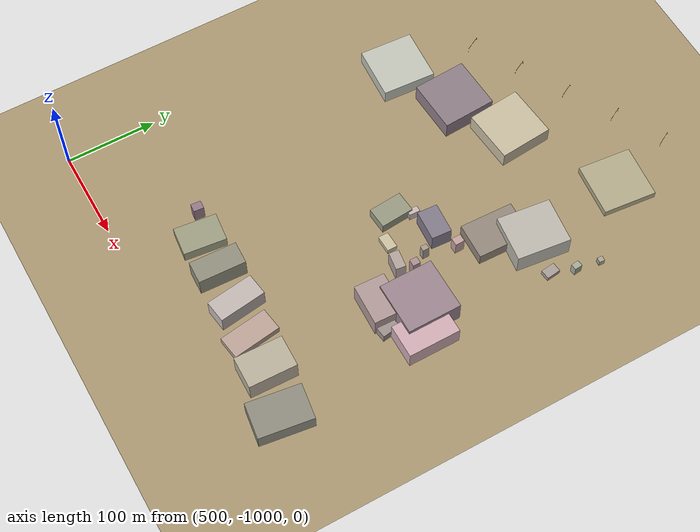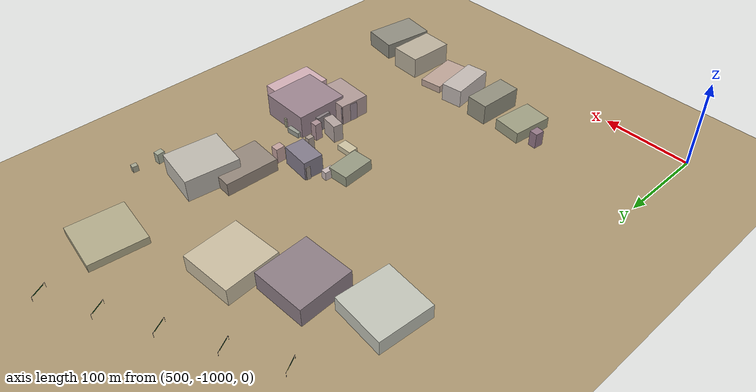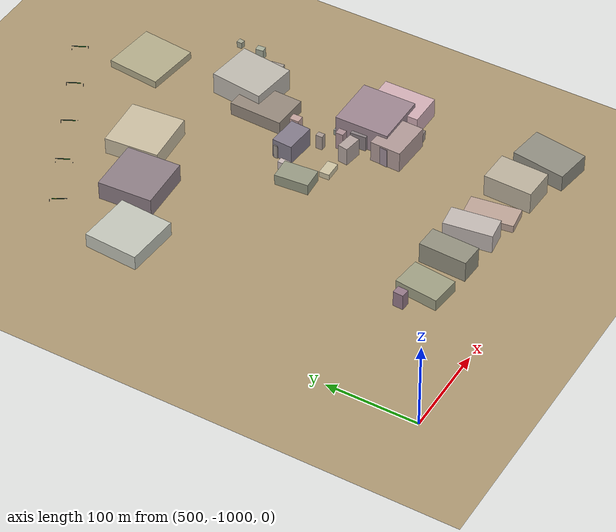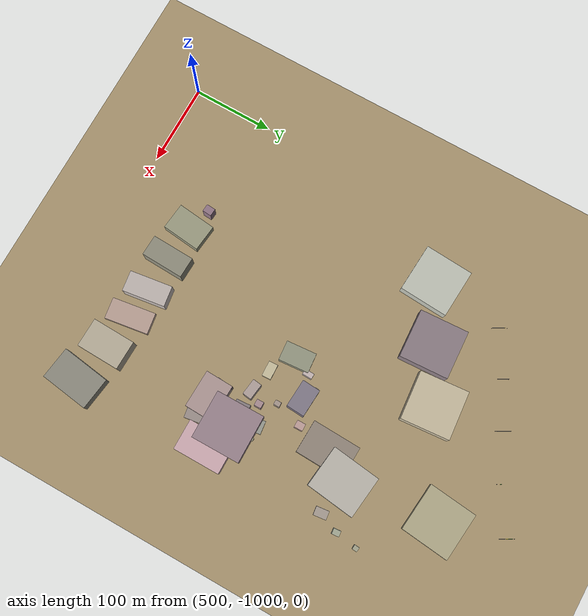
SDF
<sdf version="1.9">
 <world name="crossroad_world">
  <model name="ground_plane">
   <static>true</static>
   <pose>0 0 -0.05 0 0 0</pose>
   <link name="link">
    <collision name="collision">
     <geometry><plane><normal>0 0 1</normal><size>10000 10000</size></plane></geometry>
    </collision>
    <visual name="visual">
     <geometry><plane><normal>0 0 1</normal><size>15000 15000</size></plane></geometry>
     <material><ambient>0.68 0.60 0.45 1</ambient><diffuse>0.68 0.60 0.45 1</diffuse></material>
    </visual>
   </link>
  </model>
  <model name="gantry_92">
   <static>true</static>
   <pose>688.889 -483.650 0 0 0 -1.072</pose>
   <link name="link">
    <visual name="post_l">
     <pose>-8.900 0 2.925 0 0 0</pose>
     <geometry><cylinder><radius>0.1</radius><length>5.85</length></cylinder></geometry>
     <material><ambient>0.30 0.30 0.35 1</ambient><diffuse>0.30 0.30 0.35 1</diffuse></material>
    </visual>
    <visual name="post_r">
     <pose>8.900 0 2.925 0 0 0</pose>
     <geometry><cylinder><radius>0.1</radius><length>5.85</length></cylinder></geometry>
     <material><ambient>0.30 0.30 0.35 1</ambient><diffuse>0.30 0.30 0.35 1</diffuse></material>
    </visual>
    <visual name="beam">
     <pose>0 0 6.000 0 0 0</pose>
     <geometry><box><size>17.800 0.22 0.22</size></box></geometry>
     <material><ambient>0.30 0.30 0.35 1</ambient><diffuse>0.30 0.30 0.35 1</diffuse></material>
    </visual>
    <visual name="sign_border">
     <pose>0 -0.14 5.450 0 0 0</pose>
     <geometry><box><size>12.896 0.04 0.92</size></box></geometry>
     <material><ambient>0.90 0.85 0.10 1</ambient><diffuse>0.90 0.85 0.10 1</diffuse></material>
    </visual>
    <visual name="sign_panel">
     <pose>0 -0.15 5.450 0 0 0</pose>
     <geometry><box><size>12.816 0.05 0.86</size></box></geometry>
     <material><ambient>0.05 0.38 0.10 1</ambient><diffuse>0.05 0.38 0.10 1</diffuse></material>
    </visual>
    <collision name="col_post_l">
     <pose>-8.900 0 2.925 0 0 0</pose>
     <geometry><cylinder><radius>0.1</radius><length>5.85</length></cylinder></geometry>
    </collision>
    <collision name="col_post_r">
     <pose>8.900 0 2.925 0 0 0</pose>
     <geometry><cylinder><radius>0.1</radius><length>5.85</length></cylinder></geometry>
    </collision>
    <collision name="col_beam">
     <pose>0 0 6.000 0 0 0</pose>
     <geometry><box><size>17.800 0.22 0.22</size></box></geometry>
    </collision>
   </link>
  </model>
  <model name="gantry_93">
   <static>true</static>
   <pose>636.208 -512.367 0 0 0 -1.072</pose>
   <link name="link">
    <visual name="post_l">
     <pose>-8.900 0 2.925 0 0 0</pose>
     <geometry><cylinder><radius>0.1</radius><length>5.85</length></cylinder></geometry>
     <material><ambient>0.30 0.30 0.35 1</ambient><diffuse>0.30 0.30 0.35 1</diffuse></material>
    </visual>
    <visual name="post_r">
     <pose>8.900 0 2.925 0 0 0</pose>
     <geometry><cylinder><radius>0.1</radius><length>5.85</length></cylinder></geometry>
     <material><ambient>0.30 0.30 0.35 1</ambient><diffuse>0.30 0.30 0.35 1</diffuse></material>
    </visual>
    <visual name="beam">
     <pose>0 0 6.000 0 0 0</pose>
     <geometry><box><size>17.800 0.22 0.22</size></box></geometry>
     <material><ambient>0.30 0.30 0.35 1</ambient><diffuse>0.30 0.30 0.35 1</diffuse></material>
    </visual>
    <visual name="sign_border">
     <pose>0 -0.14 5.450 0 0 0</pose>
     <geometry><box><size>12.896 0.04 0.92</size></box></geometry>
     <material><ambient>0.90 0.85 0.10 1</ambient><diffuse>0.90 0.85 0.10 1</diffuse></material>
    </visual>
    <visual name="sign_panel">
     <pose>0 -0.15 5.450 0 0 0</pose>
     <geometry><box><size>12.816 0.05 0.86</size></box></geometry>
     <material><ambient>0.05 0.38 0.10 1</ambient><diffuse>0.05 0.38 0.10 1</diffuse></material>
    </visual>
    <collision name="col_post_l">
     <pose>-8.900 0 2.925 0 0 0</pose>
     <geometry><cylinder><radius>0.1</radius><length>5.85</length></cylinder></geometry>
    </collision>
    <collision name="col_post_r">
     <pose>8.900 0 2.925 0 0 0</pose>
     <geometry><cylinder><radius>0.1</radius><length>5.85</length></cylinder></geometry>
    </collision>
    <collision name="col_beam">
     <pose>0 0 6.000 0 0 0</pose>
     <geometry><box><size>17.800 0.22 0.22</size></box></geometry>
    </collision>
   </link>
  </model>
  <model name="gantry_94">
   <static>true</static>
   <pose>583.526 -541.084 0 0 0 -1.072</pose>
   <link name="link">
    <visual name="post_l">
     <pose>-8.900 0 2.925 0 0 0</pose>
     <geometry><cylinder><radius>0.1</radius><length>5.85</length></cylinder></geometry>
     <material><ambient>0.30 0.30 0.35 1</ambient><diffuse>0.30 0.30 0.35 1</diffuse></material>
    </visual>
    <visual name="post_r">
     <pose>8.900 0 2.925 0 0 0</pose>
     <geometry><cylinder><radius>0.1</radius><length>5.85</length></cylinder></geometry>
     <material><ambient>0.30 0.30 0.35 1</ambient><diffuse>0.30 0.30 0.35 1</diffuse></material>
    </visual>
    <visual name="beam">
     <pose>0 0 6.000 0 0 0</pose>
     <geometry><box><size>17.800 0.22 0.22</size></box></geometry>
     <material><ambient>0.30 0.30 0.35 1</ambient><diffuse>0.30 0.30 0.35 1</diffuse></material>
    </visual>
    <visual name="sign_border">
     <pose>0 -0.14 5.450 0 0 0</pose>
     <geometry><box><size>12.896 0.04 0.92</size></box></geometry>
     <material><ambient>0.90 0.85 0.10 1</ambient><diffuse>0.90 0.85 0.10 1</diffuse></material>
    </visual>
    <visual name="sign_panel">
     <pose>0 -0.15 5.450 0 0 0</pose>
     <geometry><box><size>12.816 0.05 0.86</size></box></geometry>
     <material><ambient>0.05 0.38 0.10 1</ambient><diffuse>0.05 0.38 0.10 1</diffuse></material>
    </visual>
    <collision name="col_post_l">
     <pose>-8.900 0 2.925 0 0 0</pose>
     <geometry><cylinder><radius>0.1</radius><length>5.85</length></cylinder></geometry>
    </collision>
    <collision name="col_post_r">
     <pose>8.900 0 2.925 0 0 0</pose>
     <geometry><cylinder><radius>0.1</radius><length>5.85</length></cylinder></geometry>
    </collision>
    <collision name="col_beam">
     <pose>0 0 6.000 0 0 0</pose>
     <geometry><box><size>17.800 0.22 0.22</size></box></geometry>
    </collision>
   </link>
  </model>
  <model name="gantry_97">
   <static>true</static>
   <pose>741.571 -454.933 0 0 0 -1.072</pose>
   <link name="link">
    <visual name="post_l">
     <pose>-8.900 0 2.925 0 0 0</pose>
     <geometry><cylinder><radius>0.1</radius><length>5.85</length></cylinder></geometry>
     <material><ambient>0.30 0.30 0.35 1</ambient><diffuse>0.30 0.30 0.35 1</diffuse></material>
    </visual>
    <visual name="post_r">
     <pose>8.900 0 2.925 0 0 0</pose>
     <geometry><cylinder><radius>0.1</radius><length>5.85</length></cylinder></geometry>
     <material><ambient>0.30 0.30 0.35 1</ambient><diffuse>0.30 0.30 0.35 1</diffuse></material>
    </visual>
    <visual name="beam">
     <pose>0 0 6.000 0 0 0</pose>
     <geometry><box><size>17.800 0.22 0.22</size></box></geometry>
     <material><ambient>0.30 0.30 0.35 1</ambient><diffuse>0.30 0.30 0.35 1</diffuse></material>
    </visual>
    <visual name="sign_border">
     <pose>0 -0.14 5.450 0 0 0</pose>
     <geometry><box><size>12.896 0.04 0.92</size></box></geometry>
     <material><ambient>0.90 0.85 0.10 1</ambient><diffuse>0.90 0.85 0.10 1</diffuse></material>
    </visual>
    <visual name="sign_panel">
     <pose>0 -0.15 5.450 0 0 0</pose>
     <geometry><box><size>12.816 0.05 0.86</size></box></geometry>
     <material><ambient>0.05 0.38 0.10 1</ambient><diffuse>0.05 0.38 0.10 1</diffuse></material>
    </visual>
    <collision name="col_post_l">
     <pose>-8.900 0 2.925 0 0 0</pose>
     <geometry><cylinder><radius>0.1</radius><length>5.85</length></cylinder></geometry>
    </collision>
    <collision name="col_post_r">
     <pose>8.900 0 2.925 0 0 0</pose>
     <geometry><cylinder><radius>0.1</radius><length>5.85</length></cylinder></geometry>
    </collision>
    <collision name="col_beam">
     <pose>0 0 6.000 0 0 0</pose>
     <geometry><box><size>17.800 0.22 0.22</size></box></geometry>
    </collision>
   </link>
  </model>
  <model name="gantry_98">
   <static>true</static>
   <pose>794.252 -426.216 0 0 0 -1.072</pose>
   <link name="link">
    <visual name="post_l">
     <pose>-8.900 0 2.925 0 0 0</pose>
     <geometry><cylinder><radius>0.1</radius><length>5.85</length></cylinder></geometry>
     <material><ambient>0.30 0.30 0.35 1</ambient><diffuse>0.30 0.30 0.35 1</diffuse></material>
    </visual>
    <visual name="post_r">
     <pose>8.900 0 2.925 0 0 0</pose>
     <geometry><cylinder><radius>0.1</radius><length>5.85</length></cylinder></geometry>
     <material><ambient>0.30 0.30 0.35 1</ambient><diffuse>0.30 0.30 0.35 1</diffuse></material>
    </visual>
    <visual name="beam">
     <pose>0 0 6.000 0 0 0</pose>
     <geometry><box><size>17.800 0.22 0.22</size></box></geometry>
     <material><ambient>0.30 0.30 0.35 1</ambient><diffuse>0.30 0.30 0.35 1</diffuse></material>
    </visual>
    <visual name="sign_border">
     <pose>0 -0.14 5.450 0 0 0</pose>
     <geometry><box><size>12.896 0.04 0.92</size></box></geometry>
     <material><ambient>0.90 0.85 0.10 1</ambient><diffuse>0.90 0.85 0.10 1</diffuse></material>
    </visual>
    <visual name="sign_panel">
     <pose>0 -0.15 5.450 0 0 0</pose>
     <geometry><box><size>12.816 0.05 0.86</size></box></geometry>
     <material><ambient>0.05 0.38 0.10 1</ambient><diffuse>0.05 0.38 0.10 1</diffuse></material>
    </visual>
    <collision name="col_post_l">
     <pose>-8.900 0 2.925 0 0 0</pose>
     <geometry><cylinder><radius>0.1</radius><length>5.85</length></cylinder></geometry>
    </collision>
    <collision name="col_post_r">
     <pose>8.900 0 2.925 0 0 0</pose>
     <geometry><cylinder><radius>0.1</radius><length>5.85</length></cylinder></geometry>
    </collision>
    <collision name="col_beam">
     <pose>0 0 6.000 0 0 0</pose>
     <geometry><box><size>17.800 0.22 0.22</size></box></geometry>
    </collision>
   </link>
  </model>
  <model name="building_137">
   <static>true</static>
   <pose>815.275 -502.092 4.295 0 0 -0.101</pose>
   <link name="link">
    <visual name="body">
     <geometry><box><size>60.00 60.00 8.59</size></box></geometry>
     <material><ambient>0.71 0.68 0.55 1</ambient><diffuse>0.71 0.68 0.55 1</diffuse></material>
    </visual>
    <collision name="col"><geometry><box><size>60.00 60.00 8.59</size></box></geometry></collision>
   </link>
  </model>
  <model name="building_273">
   <static>true</static>
   <pose>788.953 -724.819 8.587 0 0 0.006</pose>
   <link name="link">
    <visual name="body">
     <geometry><box><size>5.98 7.36 17.17</size></box></geometry>
     <material><ambient>0.67 0.61 0.57 1</ambient><diffuse>0.67 0.61 0.57 1</diffuse></material>
    </visual>
    <collision name="col"><geometry><box><size>5.98 7.36 17.17</size></box></geometry></collision>
   </link>
  </model>
  <model name="building_274">
   <static>true</static>
   <pose>839.782 -760.320 13.705 0 0 0.005</pose>
   <link name="link">
    <visual name="body">
     <geometry><box><size>59.22 60.00 27.41</size></box></geometry>
     <material><ambient>0.62 0.53 0.57 1</ambient><diffuse>0.62 0.53 0.57 1</diffuse></material>
    </visual>
    <collision name="col"><geometry><box><size>59.22 60.00 27.41</size></box></geometry></collision>
   </link>
  </model>
  <model name="building_288">
   <static>true</static>
   <pose>799.852 -742.913 10.365 0 0 0.001</pose>
   <link name="link">
    <visual name="body">
     <geometry><box><size>7.89 8.61 20.73</size></box></geometry>
     <material><ambient>0.68 0.57 0.59 1</ambient><diffuse>0.68 0.57 0.59 1</diffuse></material>
    </visual>
    <collision name="col"><geometry><box><size>7.89 8.61 20.73</size></box></geometry></collision>
   </link>
  </model>
  <model name="building_289">
   <static>true</static>
   <pose>789.340 -757.847 10.532 0 0 -0.136</pose>
   <link name="link">
    <visual name="body">
     <geometry><box><size>20.25 11.16 21.06</size></box></geometry>
     <material><ambient>0.71 0.65 0.63 1</ambient><diffuse>0.71 0.65 0.63 1</diffuse></material>
    </visual>
    <collision name="col"><geometry><box><size>20.25 11.16 21.06</size></box></geometry></collision>
   </link>
  </model>
  <model name="building_290">
   <static>true</static>
   <pose>730.252 -731.138 6.289 0 0 0.081</pose>
   <link name="link">
    <visual name="body">
     <geometry><box><size>24.07 37.41 12.58</size></box></geometry>
     <material><ambient>0.60 0.61 0.52 1</ambient><diffuse>0.60 0.61 0.52 1</diffuse></material>
    </visual>
    <collision name="col"><geometry><box><size>24.07 37.41 12.58</size></box></geometry></collision>
   </link>
  </model>
  <model name="building_291">
   <static>true</static>
   <pose>798.326 -690.364 8.886 0 0 0.017</pose>
   <link name="link">
    <visual name="body">
     <geometry><box><size>8.69 10.50 17.77</size></box></geometry>
     <material><ambient>0.77 0.64 0.62 1</ambient><diffuse>0.77 0.64 0.62 1</diffuse></material>
    </visual>
    <collision name="col"><geometry><box><size>8.69 10.50 17.77</size></box></geometry></collision>
   </link>
  </model>
  <model name="building_292">
   <static>true</static>
   <pose>769.677 -701.972 11.089 0 0 -0.066</pose>
   <link name="link">
    <visual name="body">
     <geometry><box><size>34.47 22.54 22.18</size></box></geometry>
     <material><ambient>0.52 0.49 0.55 1</ambient><diffuse>0.52 0.49 0.55 1</diffuse></material>
    </visual>
    <collision name="col"><geometry><box><size>34.47 22.54 22.18</size></box></geometry></collision>
   </link>
  </model>
  <model name="building_293">
   <static>true</static>
   <pose>829.708 -617.948 12.743 0 0 -0.119</pose>
   <link name="link">
    <visual name="body">
     <geometry><box><size>52.17 60.00 25.49</size></box></geometry>
     <material><ambient>0.75 0.73 0.69 1</ambient><diffuse>0.75 0.73 0.69 1</diffuse></material>
    </visual>
    <collision name="col"><geometry><box><size>52.17 60.00 25.49</size></box></geometry></collision>
   </link>
  </model>
  <model name="building_294">
   <static>true</static>
   <pose>806.402 -649.322 7.569 0 0 -0.034</pose>
   <link name="link">
    <visual name="body">
     <geometry><box><size>40.90 60.00 15.14</size></box></geometry>
     <material><ambient>0.59 0.54 0.49 1</ambient><diffuse>0.59 0.54 0.49 1</diffuse></material>
    </visual>
    <collision name="col"><geometry><box><size>40.90 60.00 15.14</size></box></geometry></collision>
   </link>
  </model>
  <model name="building_300">
   <static>true</static>
   <pose>629.264 -908.010 9.110 0 0 -0.082</pose>
   <link name="link">
    <visual name="body">
     <geometry><box><size>9.38 11.33 18.22</size></box></geometry>
     <material><ambient>0.59 0.48 0.54 1</ambient><diffuse>0.59 0.48 0.54 1</diffuse></material>
    </visual>
    <collision name="col"><geometry><box><size>9.38 11.33 18.22</size></box></geometry></collision>
   </link>
  </model>
  <model name="building_301">
   <static>true</static>
   <pose>759.091 -751.771 3.299 0 0 0.031</pose>
   <link name="link">
    <visual name="body">
     <geometry><box><size>18.74 11.31 6.60</size></box></geometry>
     <material><ambient>0.81 0.77 0.64 1</ambient><diffuse>0.81 0.77 0.64 1</diffuse></material>
    </visual>
    <collision name="col"><geometry><box><size>18.74 11.31 6.60</size></box></geometry></collision>
   </link>
  </model>
  <model name="building_311">
   <static>true</static>
   <pose>881.729 -597.293 6.092 0 0 0.100</pose>
   <link name="link">
    <visual name="body">
     <geometry><box><size>6.86 8.75 12.18</size></box></geometry>
     <material><ambient>0.66 0.68 0.60 1</ambient><diffuse>0.66 0.68 0.60 1</diffuse></material>
    </visual>
    <collision name="col"><geometry><box><size>6.86 8.75 12.18</size></box></geometry></collision>
   </link>
  </model>
  <model name="building_312">
   <static>true</static>
   <pose>871.518 -621.862 2.908 0 0 0.118</pose>
   <link name="link">
    <visual name="body">
     <geometry><box><size>10.64 15.73 5.82</size></box></geometry>
     <material><ambient>0.67 0.63 0.59 1</ambient><diffuse>0.67 0.63 0.59 1</diffuse></material>
    </visual>
    <collision name="col"><geometry><box><size>10.64 15.73 5.82</size></box></geometry></collision>
   </link>
  </model>
  <model name="building_313">
   <static>true</static>
   <pose>886.245 -569.764 3.656 0 0 -0.084</pose>
   <link name="link">
    <visual name="body">
     <geometry><box><size>5.68 6.16 7.31</size></box></geometry>
     <material><ambient>0.66 0.66 0.57 1</ambient><diffuse>0.66 0.66 0.57 1</diffuse></material>
    </visual>
    <collision name="col"><geometry><box><size>5.68 6.16 7.31</size></box></geometry></collision>
   </link>
  </model>
  <model name="building_314">
   <static>true</static>
   <pose>822.297 -738.919 3.134 0 0 0.109</pose>
   <link name="link">
    <visual name="body">
     <geometry><box><size>16.31 26.22 6.27</size></box></geometry>
     <material><ambient>0.61 0.62 0.58 1</ambient><diffuse>0.61 0.62 0.58 1</diffuse></material>
    </visual>
    <collision name="col"><geometry><box><size>16.31 26.22 6.27</size></box></geometry></collision>
   </link>
  </model>
  <model name="building_315">
   <static>true</static>
   <pose>837.946 -731.044 5.874 0 0 -0.150</pose>
   <link name="link">
    <visual name="body">
     <geometry><box><size>3.58 4.36 11.75</size></box></geometry>
     <material><ambient>0.70 0.69 0.59 1</ambient><diffuse>0.70 0.69 0.59 1</diffuse></material>
    </visual>
    <collision name="col"><geometry><box><size>3.58 4.36 11.75</size></box></geometry></collision>
   </link>
  </model>
  <model name="building_316">
   <static>true</static>
   <pose>812.416 -758.690 9.021 0 0 0.054</pose>
   <link name="link">
    <visual name="body">
     <geometry><box><size>11.96 17.53 18.04</size></box></geometry>
     <material><ambient>0.54 0.50 0.51 1</ambient><diffuse>0.54 0.50 0.51 1</diffuse></material>
    </visual>
    <collision name="col"><geometry><box><size>11.96 17.53 18.04</size></box></geometry></collision>
   </link>
  </model>
  <model name="building_317">
   <static>true</static>
   <pose>741.371 -710.570 5.056 0 0 -0.035</pose>
   <link name="link">
    <visual name="body">
     <geometry><box><size>6.75 12.01 10.11</size></box></geometry>
     <material><ambient>0.80 0.74 0.73 1</ambient><diffuse>0.80 0.74 0.73 1</diffuse></material>
    </visual>
    <collision name="col"><geometry><box><size>6.75 12.01 10.11</size></box></geometry></collision>
   </link>
  </model>
  <model name="building_318">
   <static>true</static>
   <pose>756.160 -693.827 8.026 0 0 -0.090</pose>
   <link name="link">
    <visual name="body">
     <geometry><box><size>8.60 4.97 16.05</size></box></geometry>
     <material><ambient>0.63 0.59 0.56 1</ambient><diffuse>0.63 0.59 0.56 1</diffuse></material>
    </visual>
    <collision name="col"><geometry><box><size>8.60 4.97 16.05</size></box></geometry></collision>
   </link>
  </model>
  <model name="building_333">
   <static>true</static>
   <pose>872.139 -772.809 11.224 0 0 -0.000</pose>
   <link name="link">
    <visual name="body">
     <geometry><box><size>37.42 57.92 22.45</size></box></geometry>
     <material><ambient>0.83 0.69 0.72 1</ambient><diffuse>0.83 0.69 0.72 1</diffuse></material>
    </visual>
    <collision name="col"><geometry><box><size>37.42 57.92 22.45</size></box></geometry></collision>
   </link>
  </model>
  <model name="building_334">
   <static>true</static>
   <pose>845.232 -801.979 5.457 0 0 0.141</pose>
   <link name="link">
    <visual name="body">
     <geometry><box><size>16.39 20.53 10.91</size></box></geometry>
     <material><ambient>0.63 0.58 0.56 1</ambient><diffuse>0.63 0.58 0.56 1</diffuse></material>
    </visual>
    <collision name="col"><geometry><box><size>16.39 20.53 10.91</size></box></geometry></collision>
   </link>
  </model>
  <model name="building_335">
   <static>true</static>
   <pose>820.271 -796.539 12.027 0 0 -0.035</pose>
   <link name="link">
    <visual name="body">
     <geometry><box><size>46.12 34.28 24.05</size></box></geometry>
     <material><ambient>0.70 0.61 0.60 1</ambient><diffuse>0.70 0.61 0.60 1</diffuse></material>
    </visual>
    <collision name="col"><geometry><box><size>46.12 34.28 24.05</size></box></geometry></collision>
   </link>
  </model>
  <model name="building_336">
   <static>true</static>
   <pose>803.685 -789.159 11.149 0 0 -0.123</pose>
   <link name="link">
    <visual name="body">
     <geometry><box><size>12.32 19.96 22.30</size></box></geometry>
     <material><ambient>0.63 0.56 0.60 1</ambient><diffuse>0.63 0.56 0.60 1</diffuse></material>
    </visual>
    <collision name="col"><geometry><box><size>12.32 19.96 22.30</size></box></geometry></collision>
   </link>
  </model>
  <model name="building_435">
   <static>true</static>
   <pose>826.698 -929.665 12.709 0 0 -0.029</pose>
   <link name="link">
    <visual name="body">
     <geometry><box><size>35.75 53.05 25.42</size></box></geometry>
     <material><ambient>0.74 0.70 0.62 1</ambient><diffuse>0.74 0.70 0.62 1</diffuse></material>
    </visual>
    <collision name="col"><geometry><box><size>35.75 53.05 25.42</size></box></geometry></collision>
   </link>
  </model>
  <model name="building_436">
   <static>true</static>
   <pose>702.943 -920.705 12.094 0 0 -0.039</pose>
   <link name="link">
    <visual name="body">
     <geometry><box><size>25.53 52.45 24.19</size></box></geometry>
     <material><ambient>0.58 0.57 0.50 1</ambient><diffuse>0.58 0.57 0.50 1</diffuse></material>
    </visual>
    <collision name="col"><geometry><box><size>25.53 52.45 24.19</size></box></geometry></collision>
   </link>
  </model>
  <model name="building_438">
   <static>true</static>
   <pose>658.025 -919.522 6.665 0 0 -0.109</pose>
   <link name="link">
    <visual name="body">
     <geometry><box><size>32.93 47.49 13.33</size></box></geometry>
     <material><ambient>0.63 0.63 0.52 1</ambient><diffuse>0.63 0.63 0.52 1</diffuse></material>
    </visual>
    <collision name="col"><geometry><box><size>32.93 47.49 13.33</size></box></geometry></collision>
   </link>
  </model>
  <model name="building_443">
   <static>true</static>
   <pose>783.685 -925.994 4.287 0 0 0.146</pose>
   <link name="link">
    <visual name="body">
     <geometry><box><size>26.13 54.01 8.57</size></box></geometry>
     <material><ambient>0.75 0.65 0.60 1</ambient><diffuse>0.75 0.65 0.60 1</diffuse></material>
    </visual>
    <collision name="col"><geometry><box><size>26.13 54.01 8.57</size></box></geometry></collision>
   </link>
  </model>
  <model name="building_445">
   <static>true</static>
   <pose>747.301 -922.182 10.818 0 0 0.139</pose>
   <link name="link">
    <visual name="body">
     <geometry><box><size>25.27 52.61 21.64</size></box></geometry>
     <material><ambient>0.77 0.73 0.71 1</ambient><diffuse>0.77 0.73 0.71 1</diffuse></material>
    </visual>
    <collision name="col"><geometry><box><size>25.27 52.61 21.64</size></box></geometry></collision>
   </link>
  </model>
  <model name="building_452">
   <static>true</static>
   <pose>877.709 -940.992 9.659 0 0 -0.140</pose>
   <link name="link">
    <visual name="body">
     <geometry><box><size>40.14 60.00 19.32</size></box></geometry>
     <material><ambient>0.57 0.56 0.51 1</ambient><diffuse>0.57 0.56 0.51 1</diffuse></material>
    </visual>
    <collision name="col"><geometry><box><size>40.14 60.00 19.32</size></box></geometry></collision>
   </link>
  </model>
  <model name="building_628">
   <static>true</static>
   <pose>641.467 -600.843 10.609 0 0 0.056</pose>
   <link name="link">
    <visual name="body">
     <geometry><box><size>60.00 60.00 21.22</size></box></geometry>
     <material><ambient>0.56 0.50 0.53 1</ambient><diffuse>0.56 0.50 0.53 1</diffuse></material>
    </visual>
    <collision name="col"><geometry><box><size>60.00 60.00 21.22</size></box></geometry></collision>
   </link>
  </model>
  <model name="building_629">
   <static>true</static>
   <pose>572.500 -632.686 8.309 0 0 -0.063</pose>
   <link name="link">
    <visual name="body">
     <geometry><box><size>60.00 60.00 16.62</size></box></geometry>
     <material><ambient>0.77 0.78 0.73 1</ambient><diffuse>0.77 0.78 0.73 1</diffuse></material>
    </visual>
    <collision name="col"><geometry><box><size>60.00 60.00 16.62</size></box></geometry></collision>
   </link>
  </model>
  <model name="building_677">
   <static>true</static>
   <pose>703.058 -567.520 9.741 0 0 0.086</pose>
   <link name="link">
    <visual name="body">
     <geometry><box><size>60.00 60.00 19.48</size></box></geometry>
     <material><ambient>0.80 0.75 0.64 1</ambient><diffuse>0.80 0.75 0.64 1</diffuse></material>
    </visual>
    <collision name="col"><geometry><box><size>60.00 60.00 19.48</size></box></geometry></collision>
   </link>
  </model>
 </world>
</sdf>
